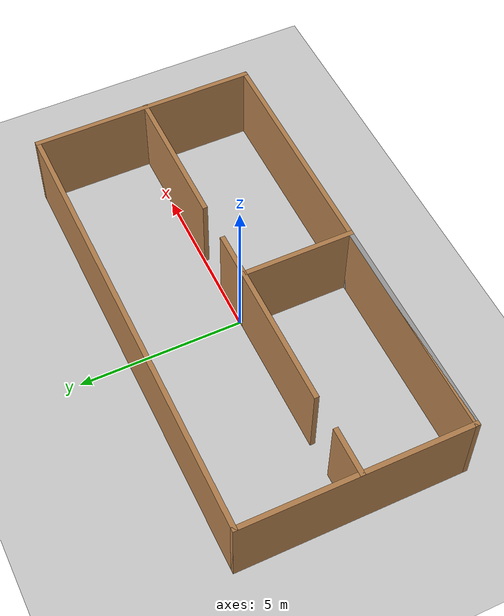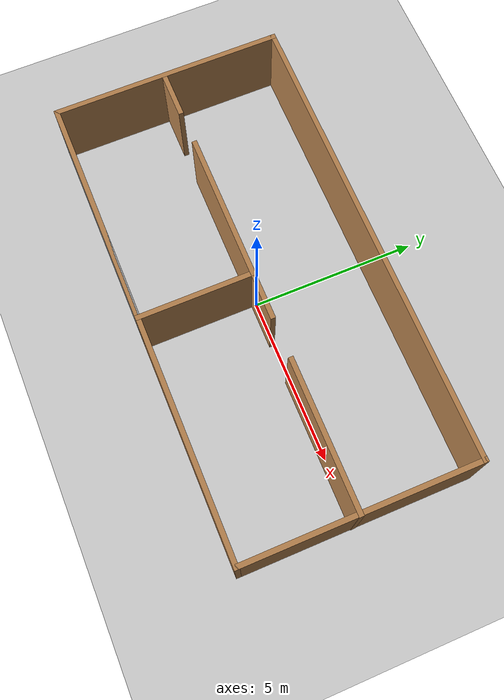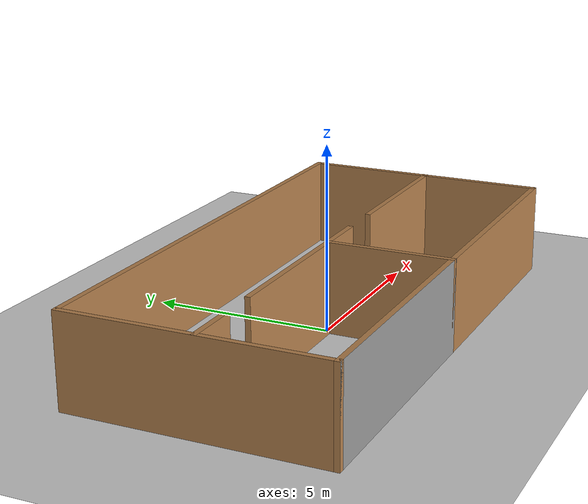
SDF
<?xml version='1.0' encoding='utf-8'?>
<sdf version="1.6">
  <world name="rooms">
    <gravity>0 0 -9.8</gravity>
    <physics default="0" name="default_physics" type="ode">
      <max_step_size>0.001</max_step_size>
      <real_time_factor>1</real_time_factor>
      <real_time_update_rate>1000</real_time_update_rate>
    </physics>

    <include>
      <uri>model://sun</uri>
    </include>

    <include>
      <uri>model://ground_plane</uri>
    </include>

    <include>
      <uri>model://walls</uri>
      <static>true</static>
      <pose>0 0 0 0 0 0</pose>
    </include>

  </world>
</sdf>

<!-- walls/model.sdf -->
<sdf version='1.7'>
  <model name='rooms2'>
    <pose>1.61579 -3.39087 0 0 -0 0</pose>
    <link name='Wall_10'>
      <collision name='Wall_10_Collision'>
        <geometry>
          <box>
            <size>3.5 0.15 2.5</size>
          </box>
        </geometry>
        <pose>0 0 1.25 0 -0 0</pose>
      </collision>
      <visual name='Wall_10_Visual'>
        <pose>0 0 1.25 0 -0 0</pose>
        <geometry>
          <box>
            <size>3.5 0.15 2.5</size>
          </box>
        </geometry>
        <material>
          <script>
            <uri>file://media/materials/scripts/gazebo.material</uri>
            <name>Gazebo/Wood</name>
          </script>
          <ambient>1 1 1 1</ambient>
        </material>
        <meta>
          <layer>0</layer>
        </meta>
      </visual>
      <pose>-0.081431 -1.75 0 0 -0 1.5708</pose>
    </link>
    <link name='Wall_11'>
      <collision name='Wall_11_Collision'>
        <geometry>
          <box>
            <size>4.5 0.15 2.5</size>
          </box>
        </geometry>
        <pose>0 0 1.25 0 -0 0</pose>
      </collision>
      <visual name='Wall_11_Visual'>
        <pose>0 0 1.25 0 -0 0</pose>
        <geometry>
          <box>
            <size>4.5 0.15 2.5</size>
          </box>
        </geometry>
        <material>
          <script>
            <uri>file://media/materials/scripts/gazebo.material</uri>
            <name>Gazebo/Wood</name>
          </script>
          <ambient>1 1 1 1</ambient>
        </material>
        <meta>
          <layer>0</layer>
        </meta>
      </visual>
      <pose>-2.25643 -0.075 0 0 -0 3.14159</pose>
    </link>
    <link name='Wall_15'>
      <collision name='Wall_15_Collision'>
        <geometry>
          <box>
            <size>1.5 0.15 2.5</size>
          </box>
        </geometry>
        <pose>0 0 1.25 0 -0 0</pose>
      </collision>
      <visual name='Wall_15_Visual'>
        <pose>0 0 1.25 0 -0 0</pose>
        <geometry>
          <box>
            <size>1.5 0.15 2.5</size>
          </box>
        </geometry>
        <material>
          <script>
            <uri>file://media/materials/scripts/gazebo.material</uri>
            <name>Gazebo/Wood</name>
          </script>
          <ambient>1 1 1 1</ambient>
        </material>
        <meta>
          <layer>0</layer>
        </meta>
      </visual>
      <pose>-6.25182 -0.092179 0 0 -0 0</pose>
    </link>
    <link name='Wall_17'>
      <collision name='Wall_17_Collision'>
        <geometry>
          <box>
            <size>1.5 0.15 2.5</size>
          </box>
        </geometry>
        <pose>0 0 1.25 0 -0 0</pose>
      </collision>
      <visual name='Wall_17_Visual'>
        <pose>0 0 1.25 0 -0 0</pose>
        <geometry>
          <box>
            <size>1.5 0.15 2.5</size>
          </box>
        </geometry>
        <material>
          <script>
            <uri>file://media/materials/scripts/gazebo.material</uri>
            <name>Gazebo/Wood</name>
          </script>
          <ambient>1 1 1 1</ambient>
        </material>
        <meta>
          <layer>0</layer>
        </meta>
      </visual>
      <pose>0.593569 -0.075 0 0 -0 0</pose>
    </link>
    <link name='Wall_19'>
      <collision name='Wall_19_Collision'>
        <geometry>
          <box>
            <size>4.5 0.15 2.5</size>
          </box>
        </geometry>
        <pose>0 0 1.25 0 -0 0</pose>
      </collision>
      <visual name='Wall_19_Visual'>
        <pose>0 0 1.25 0 -0 0</pose>
        <geometry>
          <box>
            <size>4.5 0.15 2.5</size>
          </box>
        </geometry>
        <material>
          <script>
            <uri>file://media/materials/scripts/gazebo.material</uri>
            <name>Gazebo/Wood</name>
          </script>
          <ambient>1 1 1 1</ambient>
        </material>
        <meta>
          <layer>0</layer>
        </meta>
      </visual>
      <pose>4.75643 -0.072065 0 0 -0 3.14159</pose>
    </link>
    <link name='Wall_4'>
      <collision name='Wall_4_Collision'>
        <geometry>
          <box>
            <size>7 0.15 2.5</size>
          </box>
        </geometry>
        <pose>0 0 1.25 0 -0 0</pose>
      </collision>
      <visual name='Wall_4_Visual'>
        <pose>0 0 1.25 0 -0 0</pose>
        <geometry>
          <box>
            <size>7 0.15 2.5</size>
          </box>
        </geometry>
        <material>
          <script>
            <uri>file://media/materials/scripts/gazebo.material</uri>
            <name>Gazebo/Wood</name>
          </script>
          <ambient>1 1 1 1</ambient>
        </material>
        <meta>
          <layer>0</layer>
        </meta>
      </visual>
      <pose>-6.93143 0 0 0 -0 1.5708</pose>
    </link>
    <link name='Wall_5'>
      <collision name='Wall_5_Collision'>
        <geometry>
          <box>
            <size>14 0.15 2.5</size>
          </box>
        </geometry>
        <pose>0 0 1.25 0 -0 0</pose>
      </collision>
      <visual name='Wall_5_Visual'>
        <pose>0 0 1.25 0 -0 0</pose>
        <geometry>
          <box>
            <size>14 0.15 2.5</size>
          </box>
        </geometry>
        <material>
          <script>
            <uri>file://media/materials/scripts/gazebo.material</uri>
            <name>Gazebo/Wood</name>
          </script>
          <ambient>1 1 1 1</ambient>
        </material>
        <meta>
          <layer>0</layer>
        </meta>
      </visual>
      <pose>-0.006431 3.425 0 0 -0 0</pose>
    </link>
    <link name='Wall_6'>
      <collision name='Wall_6_Collision'>
        <geometry>
          <box>
            <size>7 0.15 2.5</size>
          </box>
        </geometry>
        <pose>0 0 1.25 0 -0 0</pose>
      </collision>
      <visual name='Wall_6_Visual'>
        <pose>0 0 1.25 0 -0 0</pose>
        <geometry>
          <box>
            <size>7 0.15 2.5</size>
          </box>
        </geometry>
        <material>
          <script>
            <uri>file://media/materials/scripts/gazebo.material</uri>
            <name>Gazebo/Wood</name>
          </script>
          <ambient>1 1 1 1</ambient>
        </material>
        <meta>
          <layer>0</layer>
        </meta>
      </visual>
      <pose>6.91857 0 0 0 -0 -1.5708</pose>
    </link>
    <link name='Wall_7'>
      <collision name='Wall_7_Collision'>
        <geometry>
          <box>
            <size>14 0.15 2.5</size>
          </box>
        </geometry>
        <pose>0 0 1.25 0 -0 0</pose>
      </collision>
      <visual name='Wall_7_Visual'>
        <pose>0 0 1.25 0 -0 0</pose>
        <geometry>
          <box>
            <size>14 0.15 2.5</size>
          </box>
        </geometry>
        <material>
          <script>
            <uri>file://media/materials/scripts/gazebo.material</uri>
            <name>Gazebo/Wood</name>
          </script>
          <ambient>1 1 1 1</ambient>
        </material>
        <meta>
          <layer>0</layer>
        </meta>
      </visual>
      <pose>-0.006431 -3.425 0 0 -0 3.14159</pose>
    </link>
    <link name='Wall_9'>
      <collision name='Wall_9_Collision'>
        <geometry>
          <box>
            <size>7 0.15 2.5</size>
          </box>
        </geometry>
        <pose>0 0 1.25 0 -0 0</pose>
      </collision>
      <visual name='Wall_9_Visual'>
        <pose>0 0 1.25 0 -0 0</pose>
        <geometry>
          <box>
            <size>7 0.15 2.5</size>
          </box>
        </geometry>
        <material>
          <script>
            <uri>file://media/materials/scripts/gazebo.material</uri>
            <name>Gazebo/Grey</name>
          </script>
          <ambient>1 1 1 1</ambient>
        </material>
        <meta>
          <layer>0</layer>
        </meta>
      </visual>
      <pose>-3.50643 -3.425 0 0 -0 0</pose>
    </link>
    <static>1</static>
  </model>
</sdf>
